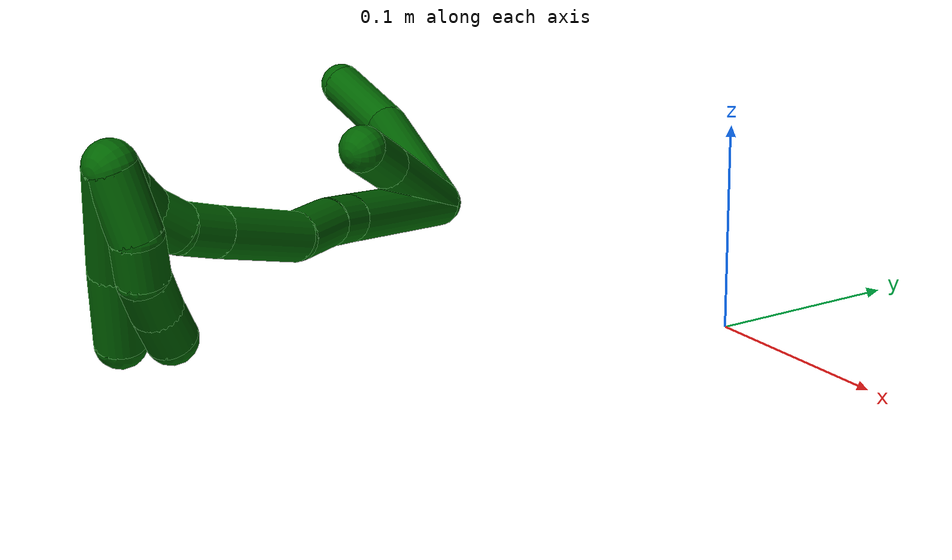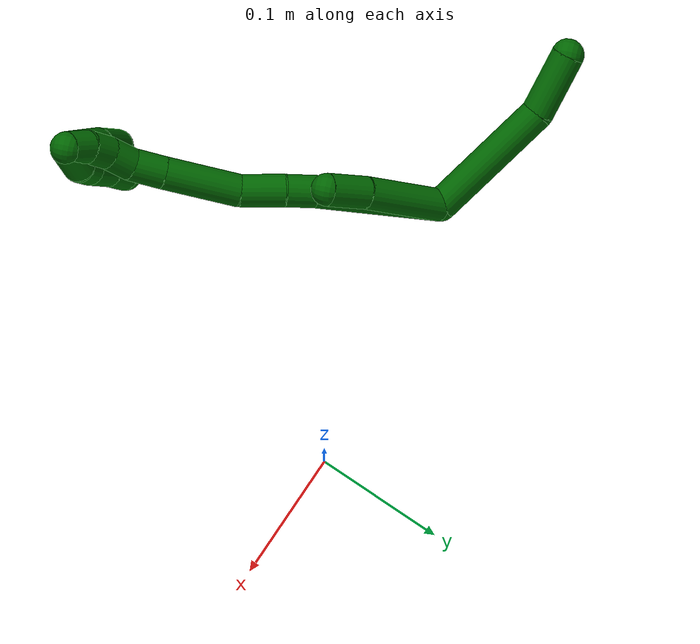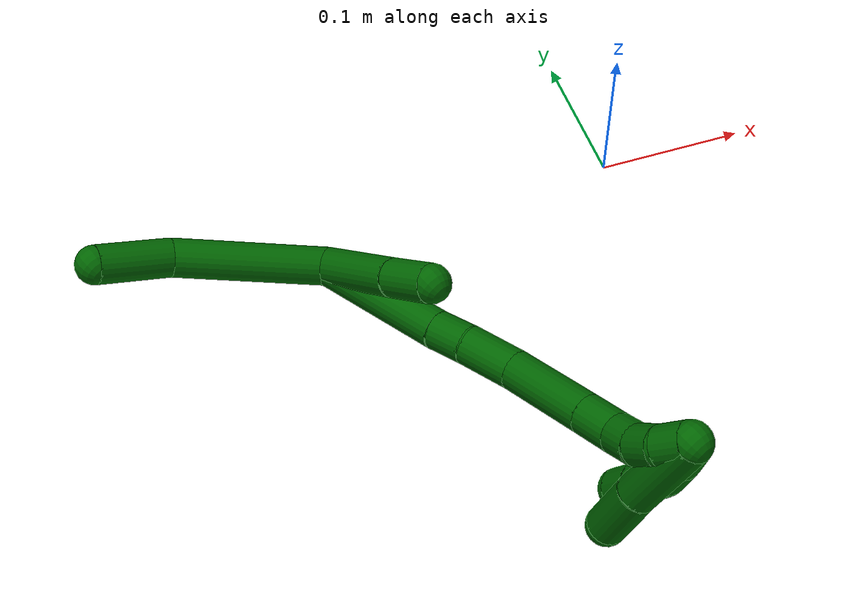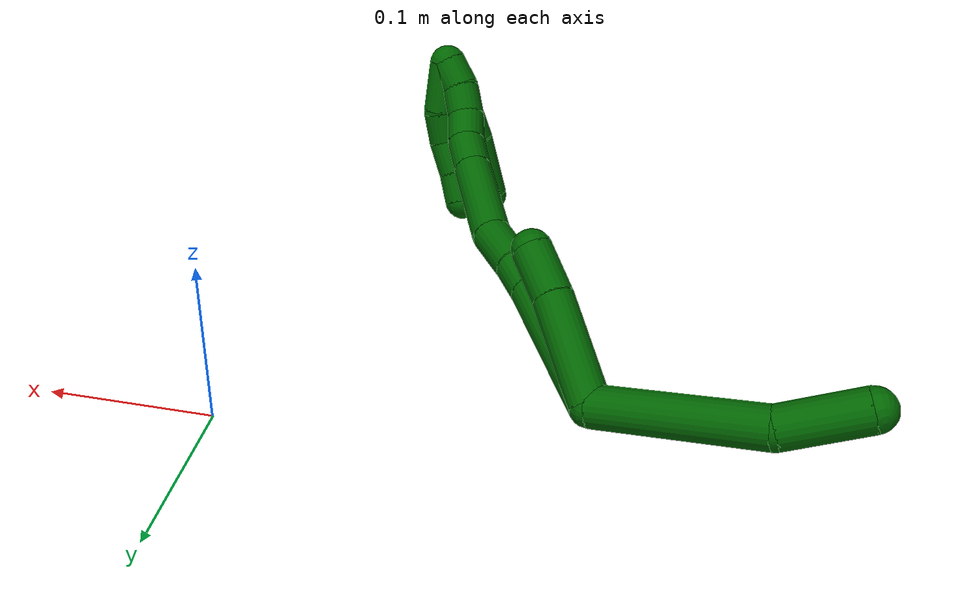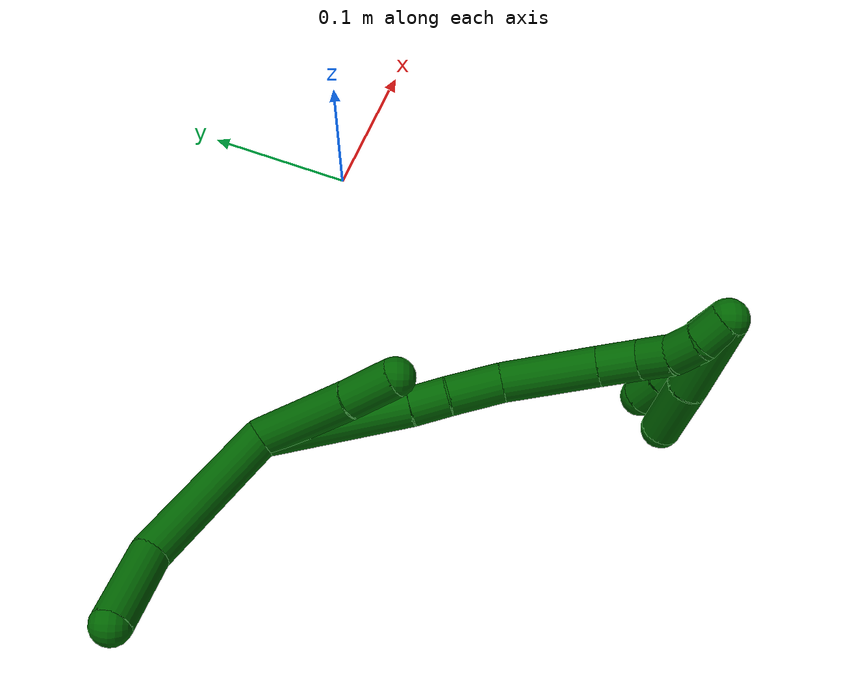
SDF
<sdf version="1.7">
 <world name="default">
  <model name="6">
   <static>0</static>
   <link name="6">
    <collision name="collision-cylinder-e_1_2_8">
     <pose>0.005976 0.040743 -0.028744 -2.1852 0.119292 -0.229412</pose>
     <geometry><cylinder><radius>0.0125</radius><length>0.100436</length></cylinder></geometry>
     <surface>
      <friction><ode><mu>1.16</mu><mu2>1.16</mu2><slip1>0</slip1><slip2>0</slip2></ode></friction>
      <contact><ode><kp>1e+06</kp><kd>1</kd><max_vel>0</max_vel><min_depth>0.001</min_depth></ode></contact>
     </surface>
    </collision>
    <visual name="visual-cylinder-e_1_2_8">
     <pose>0.005976 0.040743 -0.028744 -2.1852 0.119292 -0.229412</pose>
     <geometry><cylinder><radius>0.0125</radius><length>0.100436</length></cylinder></geometry>
     <material><ambient>0 0.392157 0.003922 1</ambient></material>
    </visual>
    <collision name="collision-cylinder-e_2_8_6">
     <pose>0.018968 0.104151 -0.064641 -1.87652 0.286979 -0.389229</pose>
     <geometry><cylinder><radius>0.0125</radius><length>0.049564</length></cylinder></geometry>
     <surface>
      <friction><ode><mu>1.16</mu><mu2>1.16</mu2><slip1>0</slip1><slip2>0</slip2></ode></friction>
      <contact><ode><kp>1e+06</kp><kd>1</kd><max_vel>0</max_vel><min_depth>0.001</min_depth></ode></contact>
     </surface>
    </collision>
    <visual name="visual-cylinder-e_2_8_6">
     <pose>0.018968 0.104151 -0.064641 -1.87652 0.286979 -0.389229</pose>
     <geometry><cylinder><radius>0.0125</radius><length>0.049564</length></cylinder></geometry>
     <material><ambient>0 0.392157 0.003922 1</ambient></material>
    </visual>
    <collision name="collision-cylinder-e_1_2_9">
     <pose>0.020969 -0.004289 0.025837 0.164499 0.675129 0.057853</pose>
     <geometry><cylinder><radius>0.0125</radius><length>0.0671</length></cylinder></geometry>
     <surface>
      <friction><ode><mu>1.16</mu><mu2>1.16</mu2><slip1>0</slip1><slip2>0</slip2></ode></friction>
      <contact><ode><kp>1e+06</kp><kd>1</kd><max_vel>0</max_vel><min_depth>0.001</min_depth></ode></contact>
     </surface>
    </collision>
    <visual name="visual-cylinder-e_1_2_9">
     <pose>0.020969 -0.004289 0.025837 0.164499 0.675129 0.057853</pose>
     <geometry><cylinder><radius>0.0125</radius><length>0.0671</length></cylinder></geometry>
     <material><ambient>0 0.392157 0.003922 1</ambient></material>
    </visual>
    <collision name="collision-cylinder-e_2_9_5">
     <pose>0.05165 -0.011837 0.064544 0.248033 0.631573 0.08141</pose>
     <geometry><cylinder><radius>0.0125</radius><length>0.0329</length></cylinder></geometry>
     <surface>
      <friction><ode><mu>1.16</mu><mu2>1.16</mu2><slip1>0</slip1><slip2>0</slip2></ode></friction>
      <contact><ode><kp>1e+06</kp><kd>1</kd><max_vel>0</max_vel><min_depth>0.001</min_depth></ode></contact>
     </surface>
    </collision>
    <visual name="visual-cylinder-e_2_9_5">
     <pose>0.05165 -0.011837 0.064544 0.248033 0.631573 0.08141</pose>
     <geometry><cylinder><radius>0.0125</radius><length>0.0329</length></cylinder></geometry>
     <material><ambient>0 0.392157 0.003922 1</ambient></material>
    </visual>
    <collision name="collision-cylinder-e_1_2_10">
     <pose>0.013783 -0.006621 0.045348 0.144978 0.292136 0.021365</pose>
     <geometry><cylinder><radius>0.0125</radius><length>0.095713</length></cylinder></geometry>
     <surface>
      <friction><ode><mu>1.16</mu><mu2>1.16</mu2><slip1>0</slip1><slip2>0</slip2></ode></friction>
      <contact><ode><kp>1e+06</kp><kd>1</kd><max_vel>0</max_vel><min_depth>0.001</min_depth></ode></contact>
     </surface>
    </collision>
    <visual name="visual-cylinder-e_1_2_10">
     <pose>0.013783 -0.006621 0.045348 0.144978 0.292136 0.021365</pose>
     <geometry><cylinder><radius>0.0125</radius><length>0.095713</length></cylinder></geometry>
     <material><ambient>0 0.392157 0.003922 1</ambient></material>
    </visual>
    <collision name="collision-cylinder-e_2_10_11">
     <pose>0.031085 -0.015709 0.101618 0.222196 0.304549 0.034236</pose>
     <geometry><cylinder><radius>0.0125</radius><length>0.023475</length></cylinder></geometry>
     <surface>
      <friction><ode><mu>1.16</mu><mu2>1.16</mu2><slip1>0</slip1><slip2>0</slip2></ode></friction>
      <contact><ode><kp>1e+06</kp><kd>1</kd><max_vel>0</max_vel><min_depth>0.001</min_depth></ode></contact>
     </surface>
    </collision>
    <visual name="visual-cylinder-e_2_10_11">
     <pose>0.031085 -0.015709 0.101618 0.222196 0.304549 0.034236</pose>
     <geometry><cylinder><radius>0.0125</radius><length>0.023475</length></cylinder></geometry>
     <material><ambient>0 0.392157 0.003922 1</ambient></material>
    </visual>
    <collision name="collision-cylinder-e_3_11_12">
     <pose>0.037921 -0.022263 0.129001 0.243338 0.193123 0.023686</pose>
     <geometry><cylinder><radius>0.0125</radius><length>0.034563</length></cylinder></geometry>
     <surface>
      <friction><ode><mu>1.16</mu><mu2>1.16</mu2><slip1>0</slip1><slip2>0</slip2></ode></friction>
      <contact><ode><kp>1e+06</kp><kd>1</kd><max_vel>0</max_vel><min_depth>0.001</min_depth></ode></contact>
     </surface>
    </collision>
    <visual name="visual-cylinder-e_3_11_12">
     <pose>0.037921 -0.022263 0.129001 0.243338 0.193123 0.023686</pose>
     <geometry><cylinder><radius>0.0125</radius><length>0.034563</length></cylinder></geometry>
     <material><ambient>0 0.392157 0.003922 1</ambient></material>
    </visual>
    <collision name="collision-cylinder-e_4_12_13">
     <pose>0.053248 -0.027277 0.172854 0.033832 0.412986 0.007088</pose>
     <geometry><cylinder><radius>0.0125</radius><length>0.059847</length></cylinder></geometry>
     <surface>
      <friction><ode><mu>1.16</mu><mu2>1.16</mu2><slip1>0</slip1><slip2>0</slip2></ode></friction>
      <contact><ode><kp>1e+06</kp><kd>1</kd><max_vel>0</max_vel><min_depth>0.001</min_depth></ode></contact>
     </surface>
    </collision>
    <visual name="visual-cylinder-e_4_12_13">
     <pose>0.053248 -0.027277 0.172854 0.033832 0.412986 0.007088</pose>
     <geometry><cylinder><radius>0.0125</radius><length>0.059847</length></cylinder></geometry>
     <material><ambient>0 0.392157 0.003922 1</ambient></material>
    </visual>
    <collision name="collision-cylinder-e_5_13_14">
     <pose>0.070597 -0.028334 0.211727 0.011304 0.435287 0.0025</pose>
     <geometry><cylinder><radius>0.0125</radius><length>0.025327</length></cylinder></geometry>
     <surface>
      <friction><ode><mu>1.16</mu><mu2>1.16</mu2><slip1>0</slip1><slip2>0</slip2></ode></friction>
      <contact><ode><kp>1e+06</kp><kd>1</kd><max_vel>0</max_vel><min_depth>0.001</min_depth></ode></contact>
     </surface>
    </collision>
    <visual name="visual-cylinder-e_5_13_14">
     <pose>0.070597 -0.028334 0.211727 0.011304 0.435287 0.0025</pose>
     <geometry><cylinder><radius>0.0125</radius><length>0.025327</length></cylinder></geometry>
     <material><ambient>0 0.392157 0.003922 1</ambient></material>
    </visual>
    <collision name="collision-cylinder-e_6_14_15">
     <pose>0.08262 -0.026972 0.231006 -0.189025 0.699777 -0.069154</pose>
     <geometry><cylinder><radius>0.0125</radius><length>0.020754</length></cylinder></geometry>
     <surface>
      <friction><ode><mu>1.16</mu><mu2>1.16</mu2><slip1>0</slip1><slip2>0</slip2></ode></friction>
      <contact><ode><kp>1e+06</kp><kd>1</kd><max_vel>0</max_vel><min_depth>0.001</min_depth></ode></contact>
     </surface>
    </collision>
    <visual name="visual-cylinder-e_6_14_15">
     <pose>0.08262 -0.026972 0.231006 -0.189025 0.699777 -0.069154</pose>
     <geometry><cylinder><radius>0.0125</radius><length>0.020754</length></cylinder></geometry>
     <material><ambient>0 0.392157 0.003922 1</ambient></material>
    </visual>
    <collision name="collision-cylinder-e_7_15_16">
     <pose>0.097325 -0.025996 0.244971 0.083382 0.913603 0.040998</pose>
     <geometry><cylinder><radius>0.0125</radius><length>0.020265</length></cylinder></geometry>
     <surface>
      <friction><ode><mu>1.16</mu><mu2>1.16</mu2><slip1>0</slip1><slip2>0</slip2></ode></friction>
      <contact><ode><kp>1e+06</kp><kd>1</kd><max_vel>0</max_vel><min_depth>0.001</min_depth></ode></contact>
     </surface>
    </collision>
    <visual name="visual-cylinder-e_7_15_16">
     <pose>0.097325 -0.025996 0.244971 0.083382 0.913603 0.040998</pose>
     <geometry><cylinder><radius>0.0125</radius><length>0.020265</length></cylinder></geometry>
     <material><ambient>0 0.392157 0.003922 1</ambient></material>
    </visual>
    <collision name="collision-cylinder-e_8_16_1">
     <pose>0.112914 -0.029739 0.256875 0.512543 0.854938 0.23762</pose>
     <geometry><cylinder><radius>0.0125</radius><length>0.020056</length></cylinder></geometry>
     <surface>
      <friction><ode><mu>1.16</mu><mu2>1.16</mu2><slip1>0</slip1><slip2>0</slip2></ode></friction>
      <contact><ode><kp>1e+06</kp><kd>1</kd><max_vel>0</max_vel><min_depth>0.001</min_depth></ode></contact>
     </surface>
    </collision>
    <visual name="visual-cylinder-e_8_16_1">
     <pose>0.112914 -0.029739 0.256875 0.512543 0.854938 0.23762</pose>
     <geometry><cylinder><radius>0.0125</radius><length>0.020056</length></cylinder></geometry>
     <material><ambient>0 0.392157 0.003922 1</ambient></material>
    </visual>
    <collision name="collision-cylinder-e_1_1_17">
     <pose>0.092951 -0.025012 0.258126 -2.08414 -1.25054 1.78085</pose>
     <geometry><cylinder><radius>0.0125</radius><length>0.058008</length></cylinder></geometry>
     <surface>
      <friction><ode><mu>1.16</mu><mu2>1.16</mu2><slip1>0</slip1><slip2>0</slip2></ode></friction>
      <contact><ode><kp>1e+06</kp><kd>1</kd><max_vel>0</max_vel><min_depth>0.001</min_depth></ode></contact>
     </surface>
    </collision>
    <visual name="visual-cylinder-e_1_1_17">
     <pose>0.092951 -0.025012 0.258126 -2.08414 -1.25054 1.78085</pose>
     <geometry><cylinder><radius>0.0125</radius><length>0.058008</length></cylinder></geometry>
     <material><ambient>0 0.392157 0.003922 1</ambient></material>
    </visual>
    <collision name="collision-cylinder-e_2_17_4">
     <pose>0.044979 -0.013037 0.251047 -2.14393 -1.34081 1.9376</pose>
     <geometry><cylinder><radius>0.0125</radius><length>0.041992</length></cylinder></geometry>
     <surface>
      <friction><ode><mu>1.16</mu><mu2>1.16</mu2><slip1>0</slip1><slip2>0</slip2></ode></friction>
      <contact><ode><kp>1e+06</kp><kd>1</kd><max_vel>0</max_vel><min_depth>0.001</min_depth></ode></contact>
     </surface>
    </collision>
    <visual name="visual-cylinder-e_2_17_4">
     <pose>0.044979 -0.013037 0.251047 -2.14393 -1.34081 1.9376</pose>
     <geometry><cylinder><radius>0.0125</radius><length>0.041992</length></cylinder></geometry>
     <material><ambient>0 0.392157 0.003922 1</ambient></material>
    </visual>
    <collision name="collision-cylinder-e_1_1_18">
     <pose>0.103972 -0.036159 0.26054 2.14612 -1.34425 -1.94334</pose>
     <geometry><cylinder><radius>0.0125</radius><length>0.033883</length></cylinder></geometry>
     <surface>
      <friction><ode><mu>1.16</mu><mu2>1.16</mu2><slip1>0</slip1><slip2>0</slip2></ode></friction>
      <contact><ode><kp>1e+06</kp><kd>1</kd><max_vel>0</max_vel><min_depth>0.001</min_depth></ode></contact>
     </surface>
    </collision>
    <visual name="visual-cylinder-e_1_1_18">
     <pose>0.103972 -0.036159 0.26054 2.14612 -1.34425 -1.94334</pose>
     <geometry><cylinder><radius>0.0125</radius><length>0.033883</length></cylinder></geometry>
     <material><ambient>0 0.392157 0.003922 1</ambient></material>
    </visual>
    <collision name="collision-cylinder-e_2_18_19">
     <pose>0.076783 -0.038068 0.256975 -2.43204 -1.38838 2.30416</pose>
     <geometry><cylinder><radius>0.0125</radius><length>0.021722</length></cylinder></geometry>
     <surface>
      <friction><ode><mu>1.16</mu><mu2>1.16</mu2><slip1>0</slip1><slip2>0</slip2></ode></friction>
      <contact><ode><kp>1e+06</kp><kd>1</kd><max_vel>0</max_vel><min_depth>0.001</min_depth></ode></contact>
     </surface>
    </collision>
    <visual name="visual-cylinder-e_2_18_19">
     <pose>0.076783 -0.038068 0.256975 -2.43204 -1.38838 2.30416</pose>
     <geometry><cylinder><radius>0.0125</radius><length>0.021722</length></cylinder></geometry>
     <material><ambient>0 0.392157 0.003922 1</ambient></material>
    </visual>
    <collision name="collision-cylinder-e_3_19_20">
     <pose>0.055606 -0.034382 0.250479 -2.69385 -1.08454 2.41898</pose>
     <geometry><cylinder><radius>0.0125</radius><length>0.023745</length></cylinder></geometry>
     <surface>
      <friction><ode><mu>1.16</mu><mu2>1.16</mu2><slip1>0</slip1><slip2>0</slip2></ode></friction>
      <contact><ode><kp>1e+06</kp><kd>1</kd><max_vel>0</max_vel><min_depth>0.001</min_depth></ode></contact>
     </surface>
    </collision>
    <visual name="visual-cylinder-e_3_19_20">
     <pose>0.055606 -0.034382 0.250479 -2.69385 -1.08454 2.41898</pose>
     <geometry><cylinder><radius>0.0125</radius><length>0.023745</length></cylinder></geometry>
     <material><ambient>0 0.392157 0.003922 1</ambient></material>
    </visual>
    <collision name="collision-cylinder-e_4_20_3">
     <pose>0.035854 -0.030886 0.241033 -2.90015 -1.11154 2.7558</pose>
     <geometry><cylinder><radius>0.0125</radius><length>0.020651</length></cylinder></geometry>
     <surface>
      <friction><ode><mu>1.16</mu><mu2>1.16</mu2><slip1>0</slip1><slip2>0</slip2></ode></friction>
      <contact><ode><kp>1e+06</kp><kd>1</kd><max_vel>0</max_vel><min_depth>0.001</min_depth></ode></contact>
     </surface>
    </collision>
    <visual name="visual-cylinder-e_4_20_3">
     <pose>0.035854 -0.030886 0.241033 -2.90015 -1.11154 2.7558</pose>
     <geometry><cylinder><radius>0.0125</radius><length>0.020651</length></cylinder></geometry>
     <material><ambient>0 0.392157 0.003922 1</ambient></material>
    </visual>
    <collision name="collision-sphere-3">
     <pose>0.026599 -0.029792 0.236589 0 -0 0</pose>
     <geometry><sphere><radius>0.0125</radius></sphere></geometry>
     <surface>
      <friction><ode><mu>1.16</mu><mu2>1.16</mu2><slip1>0</slip1><slip2>0</slip2></ode></friction>
      <contact><ode><kp>1e+06</kp><kd>1</kd><max_vel>0</max_vel><min_depth>0.001</min_depth></ode></contact>
     </surface>
    </collision>
    <visual name="visual-sphere-3">
     <pose>0.026599 -0.029792 0.236589 0 -0 0</pose>
     <geometry><sphere><radius>0.0125</radius></sphere></geometry>
     <material><ambient>0 0.392157 0.003922 1</ambient></material>
    </visual>
    <collision name="collision-sphere-20">
     <pose>0.04511 -0.03198 0.245478 0 -0 0</pose>
     <geometry><sphere><radius>0.0125</radius></sphere></geometry>
     <surface>
      <friction><ode><mu>1.16</mu><mu2>1.16</mu2><slip1>0</slip1><slip2>0</slip2></ode></friction>
      <contact><ode><kp>1e+06</kp><kd>1</kd><max_vel>0</max_vel><min_depth>0.001</min_depth></ode></contact>
     </surface>
    </collision>
    <visual name="visual-sphere-20">
     <pose>0.04511 -0.03198 0.245478 0 -0 0</pose>
     <geometry><sphere><radius>0.0125</radius></sphere></geometry>
     <material><ambient>0 0.392157 0.003922 1</ambient></material>
    </visual>
    <collision name="collision-sphere-19">
     <pose>0.066102 -0.036784 0.25548 0 -0 0</pose>
     <geometry><sphere><radius>0.0125</radius></sphere></geometry>
     <surface>
      <friction><ode><mu>1.16</mu><mu2>1.16</mu2><slip1>0</slip1><slip2>0</slip2></ode></friction>
      <contact><ode><kp>1e+06</kp><kd>1</kd><max_vel>0</max_vel><min_depth>0.001</min_depth></ode></contact>
     </surface>
    </collision>
    <visual name="visual-sphere-19">
     <pose>0.066102 -0.036784 0.25548 0 -0 0</pose>
     <geometry><sphere><radius>0.0125</radius></sphere></geometry>
     <material><ambient>0 0.392157 0.003922 1</ambient></material>
    </visual>
    <collision name="collision-sphere-10">
     <pose>0.027565 -0.013242 0.090696 0 -0 0</pose>
     <geometry><sphere><radius>0.0125</radius></sphere></geometry>
     <surface>
      <friction><ode><mu>1.16</mu><mu2>1.16</mu2><slip1>0</slip1><slip2>0</slip2></ode></friction>
      <contact><ode><kp>1e+06</kp><kd>1</kd><max_vel>0</max_vel><min_depth>0.001</min_depth></ode></contact>
     </surface>
    </collision>
    <visual name="visual-sphere-10">
     <pose>0.027565 -0.013242 0.090696 0 -0 0</pose>
     <geometry><sphere><radius>0.0125</radius></sphere></geometry>
     <material><ambient>0 0.392157 0.003922 1</ambient></material>
    </visual>
    <collision name="collision-sphere-5">
     <pose>0.061362 -0.015096 0.077414 0 -0 0</pose>
     <geometry><sphere><radius>0.0125</radius></sphere></geometry>
     <surface>
      <friction><ode><mu>1.16</mu><mu2>1.16</mu2><slip1>0</slip1><slip2>0</slip2></ode></friction>
      <contact><ode><kp>1e+06</kp><kd>1</kd><max_vel>0</max_vel><min_depth>0.001</min_depth></ode></contact>
     </surface>
    </collision>
    <visual name="visual-sphere-5">
     <pose>0.061362 -0.015096 0.077414 0 -0 0</pose>
     <geometry><sphere><radius>0.0125</radius></sphere></geometry>
     <material><ambient>0 0.392157 0.003922 1</ambient></material>
    </visual>
    <collision name="collision-sphere-6">
     <pose>0.025982 0.126818 -0.071795 0 -0 0</pose>
     <geometry><sphere><radius>0.0125</radius></sphere></geometry>
     <surface>
      <friction><ode><mu>1.16</mu><mu2>1.16</mu2><slip1>0</slip1><slip2>0</slip2></ode></friction>
      <contact><ode><kp>1e+06</kp><kd>1</kd><max_vel>0</max_vel><min_depth>0.001</min_depth></ode></contact>
     </surface>
    </collision>
    <visual name="visual-sphere-6">
     <pose>0.025982 0.126818 -0.071795 0 -0 0</pose>
     <geometry><sphere><radius>0.0125</radius></sphere></geometry>
     <material><ambient>0 0.392157 0.003922 1</ambient></material>
    </visual>
    <collision name="collision-sphere-9">
     <pose>0.041937 -0.008578 0.051673 0 -0 0</pose>
     <geometry><sphere><radius>0.0125</radius></sphere></geometry>
     <surface>
      <friction><ode><mu>1.16</mu><mu2>1.16</mu2><slip1>0</slip1><slip2>0</slip2></ode></friction>
      <contact><ode><kp>1e+06</kp><kd>1</kd><max_vel>0</max_vel><min_depth>0.001</min_depth></ode></contact>
     </surface>
    </collision>
    <visual name="visual-sphere-9">
     <pose>0.041937 -0.008578 0.051673 0 -0 0</pose>
     <geometry><sphere><radius>0.0125</radius></sphere></geometry>
     <material><ambient>0 0.392157 0.003922 1</ambient></material>
    </visual>
    <collision name="collision-sphere-2">
     <geometry><sphere><radius>0.0125</radius></sphere></geometry>
     <surface>
      <friction><ode><mu>1.16</mu><mu2>1.16</mu2><slip1>0</slip1><slip2>0</slip2></ode></friction>
      <contact><ode><kp>1e+06</kp><kd>1</kd><max_vel>0</max_vel><min_depth>0.001</min_depth></ode></contact>
     </surface>
    </collision>
    <visual name="visual-sphere-2">
     <geometry><sphere><radius>0.0125</radius></sphere></geometry>
     <material><ambient>0 0.392157 0.003922 1</ambient></material>
    </visual>
    <collision name="collision-sphere-8">
     <pose>0.011953 0.081485 -0.057487 0 -0 0</pose>
     <geometry><sphere><radius>0.0125</radius></sphere></geometry>
     <surface>
      <friction><ode><mu>1.16</mu><mu2>1.16</mu2><slip1>0</slip1><slip2>0</slip2></ode></friction>
      <contact><ode><kp>1e+06</kp><kd>1</kd><max_vel>0</max_vel><min_depth>0.001</min_depth></ode></contact>
     </surface>
    </collision>
    <visual name="visual-sphere-8">
     <pose>0.011953 0.081485 -0.057487 0 -0 0</pose>
     <geometry><sphere><radius>0.0125</radius></sphere></geometry>
     <material><ambient>0 0.392157 0.003922 1</ambient></material>
    </visual>
    <collision name="collision-sphere-11">
     <pose>0.034604 -0.018177 0.11254 0 -0 0</pose>
     <geometry><sphere><radius>0.0125</radius></sphere></geometry>
     <surface>
      <friction><ode><mu>1.16</mu><mu2>1.16</mu2><slip1>0</slip1><slip2>0</slip2></ode></friction>
      <contact><ode><kp>1e+06</kp><kd>1</kd><max_vel>0</max_vel><min_depth>0.001</min_depth></ode></contact>
     </surface>
    </collision>
    <visual name="visual-sphere-11">
     <pose>0.034604 -0.018177 0.11254 0 -0 0</pose>
     <geometry><sphere><radius>0.0125</radius></sphere></geometry>
     <material><ambient>0 0.392157 0.003922 1</ambient></material>
    </visual>
    <collision name="collision-sphere-12">
     <pose>0.041238 -0.02635 0.145462 0 -0 0</pose>
     <geometry><sphere><radius>0.0125</radius></sphere></geometry>
     <surface>
      <friction><ode><mu>1.16</mu><mu2>1.16</mu2><slip1>0</slip1><slip2>0</slip2></ode></friction>
      <contact><ode><kp>1e+06</kp><kd>1</kd><max_vel>0</max_vel><min_depth>0.001</min_depth></ode></contact>
     </surface>
    </collision>
    <visual name="visual-sphere-12">
     <pose>0.041238 -0.02635 0.145462 0 -0 0</pose>
     <geometry><sphere><radius>0.0125</radius></sphere></geometry>
     <material><ambient>0 0.392157 0.003922 1</ambient></material>
    </visual>
    <collision name="collision-sphere-13">
     <pose>0.065257 -0.028204 0.200245 0 -0 0</pose>
     <geometry><sphere><radius>0.0125</radius></sphere></geometry>
     <surface>
      <friction><ode><mu>1.16</mu><mu2>1.16</mu2><slip1>0</slip1><slip2>0</slip2></ode></friction>
      <contact><ode><kp>1e+06</kp><kd>1</kd><max_vel>0</max_vel><min_depth>0.001</min_depth></ode></contact>
     </surface>
    </collision>
    <visual name="visual-sphere-13">
     <pose>0.065257 -0.028204 0.200245 0 -0 0</pose>
     <geometry><sphere><radius>0.0125</radius></sphere></geometry>
     <material><ambient>0 0.392157 0.003922 1</ambient></material>
    </visual>
    <collision name="collision-sphere-14">
     <pose>0.075937 -0.028464 0.223209 0 -0 0</pose>
     <geometry><sphere><radius>0.0125</radius></sphere></geometry>
     <surface>
      <friction><ode><mu>1.16</mu><mu2>1.16</mu2><slip1>0</slip1><slip2>0</slip2></ode></friction>
      <contact><ode><kp>1e+06</kp><kd>1</kd><max_vel>0</max_vel><min_depth>0.001</min_depth></ode></contact>
     </surface>
    </collision>
    <visual name="visual-sphere-14">
     <pose>0.075937 -0.028464 0.223209 0 -0 0</pose>
     <geometry><sphere><radius>0.0125</radius></sphere></geometry>
     <material><ambient>0 0.392157 0.003922 1</ambient></material>
    </visual>
    <collision name="collision-sphere-15">
     <pose>0.089303 -0.02548 0.238803 0 -0 0</pose>
     <geometry><sphere><radius>0.0125</radius></sphere></geometry>
     <surface>
      <friction><ode><mu>1.16</mu><mu2>1.16</mu2><slip1>0</slip1><slip2>0</slip2></ode></friction>
      <contact><ode><kp>1e+06</kp><kd>1</kd><max_vel>0</max_vel><min_depth>0.001</min_depth></ode></contact>
     </surface>
    </collision>
    <visual name="visual-sphere-15">
     <pose>0.089303 -0.02548 0.238803 0 -0 0</pose>
     <geometry><sphere><radius>0.0125</radius></sphere></geometry>
     <material><ambient>0 0.392157 0.003922 1</ambient></material>
    </visual>
    <collision name="collision-sphere-16">
     <pose>0.105347 -0.026512 0.25114 0 -0 0</pose>
     <geometry><sphere><radius>0.0125</radius></sphere></geometry>
     <surface>
      <friction><ode><mu>1.16</mu><mu2>1.16</mu2><slip1>0</slip1><slip2>0</slip2></ode></friction>
      <contact><ode><kp>1e+06</kp><kd>1</kd><max_vel>0</max_vel><min_depth>0.001</min_depth></ode></contact>
     </surface>
    </collision>
    <visual name="visual-sphere-16">
     <pose>0.105347 -0.026512 0.25114 0 -0 0</pose>
     <geometry><sphere><radius>0.0125</radius></sphere></geometry>
     <material><ambient>0 0.392157 0.003922 1</ambient></material>
    </visual>
    <collision name="collision-sphere-1">
     <pose>0.12048 -0.032966 0.26261 0 -0 0</pose>
     <geometry><sphere><radius>0.0125</radius></sphere></geometry>
     <surface>
      <friction><ode><mu>1.16</mu><mu2>1.16</mu2><slip1>0</slip1><slip2>0</slip2></ode></friction>
      <contact><ode><kp>1e+06</kp><kd>1</kd><max_vel>0</max_vel><min_depth>0.001</min_depth></ode></contact>
     </surface>
    </collision>
    <visual name="visual-sphere-1">
     <pose>0.12048 -0.032966 0.26261 0 -0 0</pose>
     <geometry><sphere><radius>0.0125</radius></sphere></geometry>
     <material><ambient>0 0.392157 0.003922 1</ambient></material>
    </visual>
    <collision name="collision-sphere-18">
     <pose>0.087464 -0.039352 0.25847 0 -0 0</pose>
     <geometry><sphere><radius>0.0125</radius></sphere></geometry>
     <surface>
      <friction><ode><mu>1.16</mu><mu2>1.16</mu2><slip1>0</slip1><slip2>0</slip2></ode></friction>
      <contact><ode><kp>1e+06</kp><kd>1</kd><max_vel>0</max_vel><min_depth>0.001</min_depth></ode></contact>
     </surface>
    </collision>
    <visual name="visual-sphere-18">
     <pose>0.087464 -0.039352 0.25847 0 -0 0</pose>
     <geometry><sphere><radius>0.0125</radius></sphere></geometry>
     <material><ambient>0 0.392157 0.003922 1</ambient></material>
    </visual>
    <collision name="collision-sphere-17">
     <pose>0.065422 -0.017058 0.253642 0 -0 0</pose>
     <geometry><sphere><radius>0.0125</radius></sphere></geometry>
     <surface>
      <friction><ode><mu>1.16</mu><mu2>1.16</mu2><slip1>0</slip1><slip2>0</slip2></ode></friction>
      <contact><ode><kp>1e+06</kp><kd>1</kd><max_vel>0</max_vel><min_depth>0.001</min_depth></ode></contact>
     </surface>
    </collision>
    <visual name="visual-sphere-17">
     <pose>0.065422 -0.017058 0.253642 0 -0 0</pose>
     <geometry><sphere><radius>0.0125</radius></sphere></geometry>
     <material><ambient>0 0.392157 0.003922 1</ambient></material>
    </visual>
    <collision name="collision-sphere-4">
     <pose>0.024536 -0.009015 0.248451 0 -0 0</pose>
     <geometry><sphere><radius>0.0125</radius></sphere></geometry>
     <surface>
      <friction><ode><mu>1.16</mu><mu2>1.16</mu2><slip1>0</slip1><slip2>0</slip2></ode></friction>
      <contact><ode><kp>1e+06</kp><kd>1</kd><max_vel>0</max_vel><min_depth>0.001</min_depth></ode></contact>
     </surface>
    </collision>
    <visual name="visual-sphere-4">
     <pose>0.024536 -0.009015 0.248451 0 -0 0</pose>
     <geometry><sphere><radius>0.0125</radius></sphere></geometry>
     <material><ambient>0 0.392157 0.003922 1</ambient></material>
    </visual>
    <inertial>
     <pose>0.04462 -0.003644 0.120558 0 -0 0</pose>
     <mass>0.75</mass>
     <inertia>
      <ixx>0.000209</ixx>
      <ixy>0</ixy>
      <ixz>0</ixz>
      <iyy>0.00012</iyy>
      <iyz>0</iyz>
      <izz>-8.9e-05</izz>
     </inertia>
    </inertial>
   </link>
   <pose>-0.208606 -0.035138 0.017342 2.90861 -1.44825 -0.969415</pose>
  </model>
 </world>
</sdf>
